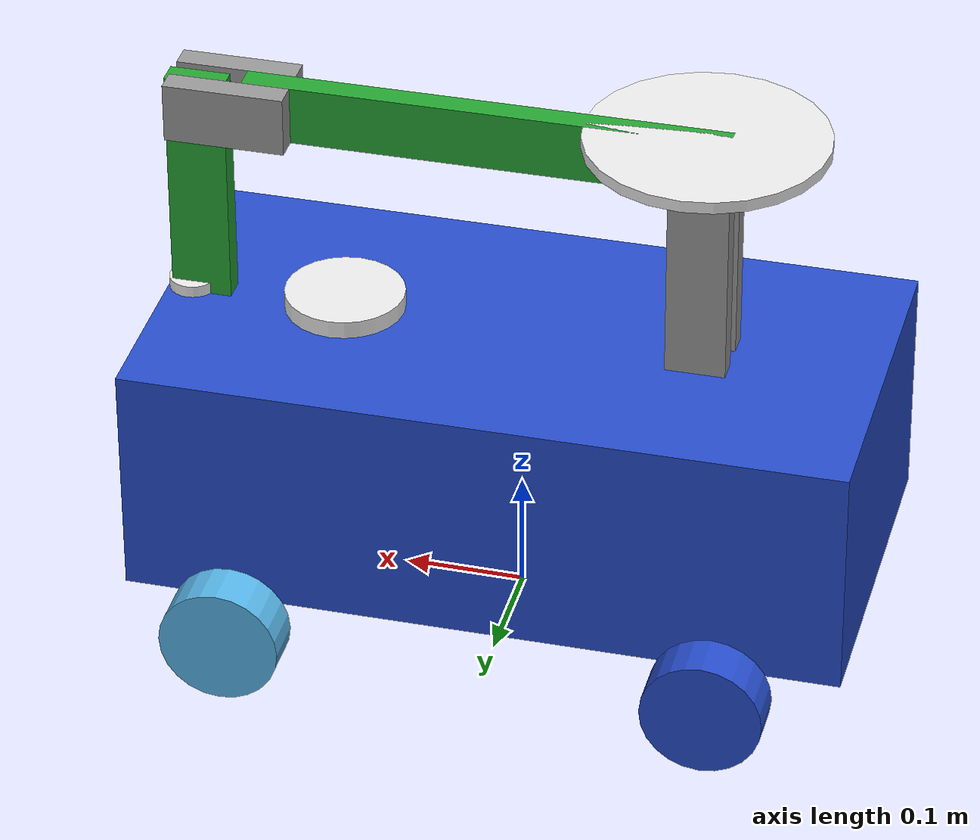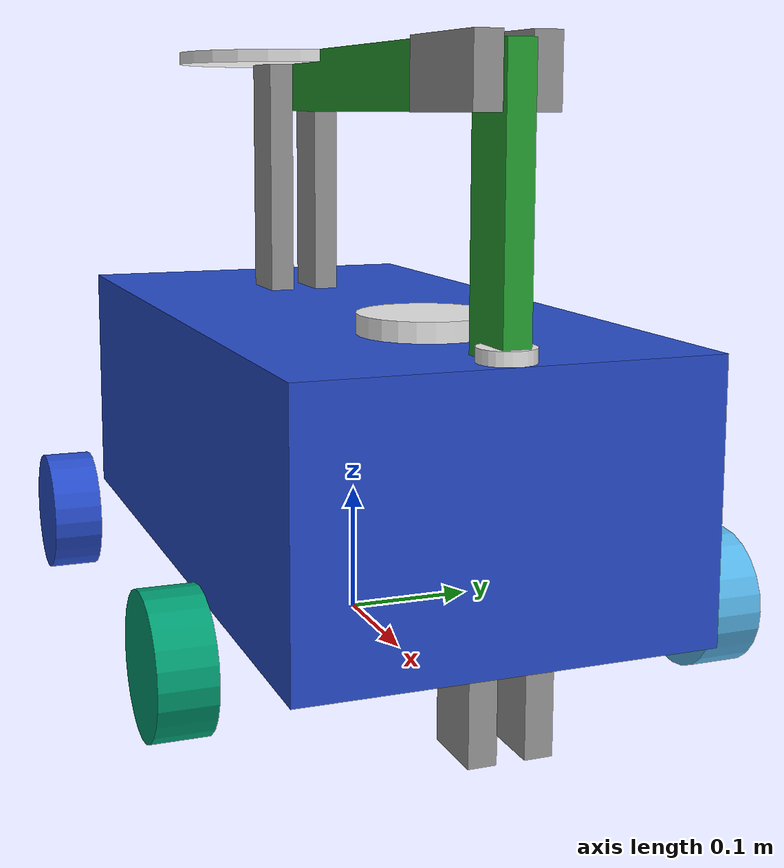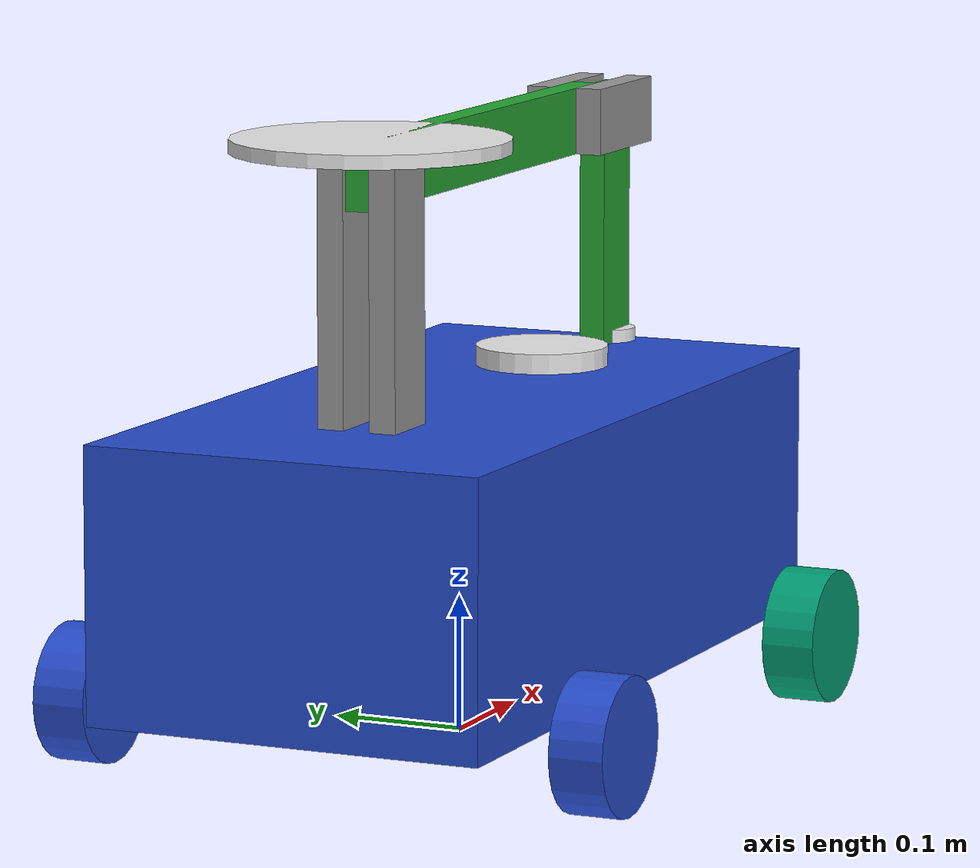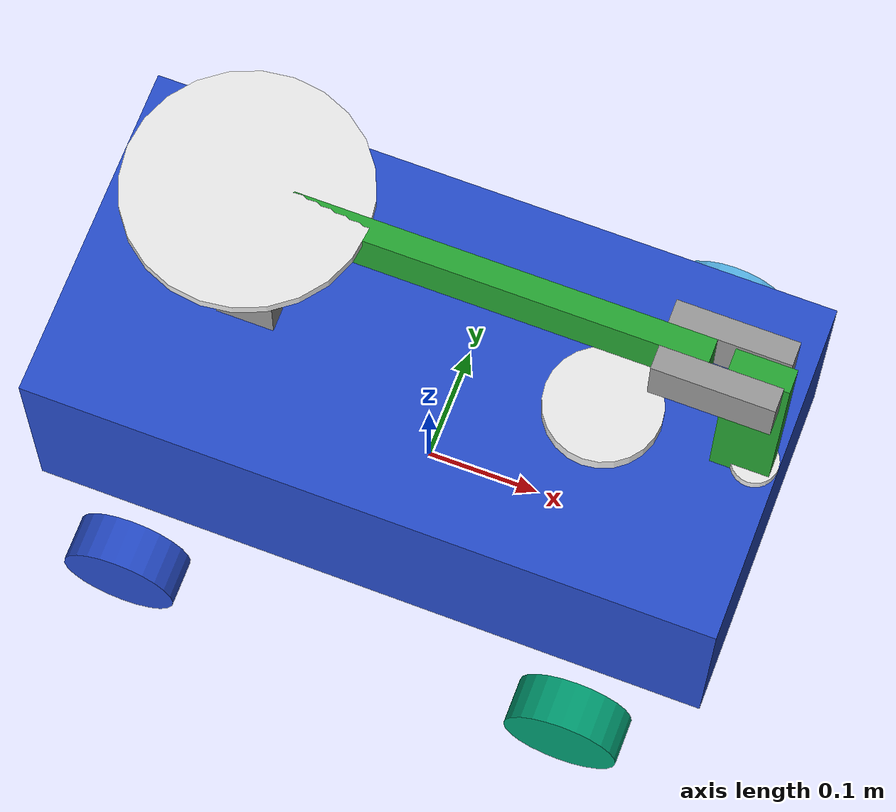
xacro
<?xml version="1.0" ?>
<robot name="test_robot" xmlns:xacro="http://www.ros.org/wiki/xacro">

  <xacro:include filename="$(find test_robot_description)/urdf/materials.xacro" />
  <xacro:include filename="$(find test_robot_description)/urdf/test_robot.gazebo" />
  <xacro:include filename="$(find test_robot_description)/urdf/macros.xacro" />

  <link name="base_link">
    <!-- pose and inertial -->
    <pose>0 0 0.1 0 0 0</pose>
    <inertial>
      <mass value="5"/>
      <origin rpy="0 0 0" xyz="0 0 0.1"/>
      <inertia ixx="0.0395416666667" ixy="0" ixz="0" iyy="0.106208333333" iyz="0" izz="0.106208333333"/>
    </inertial>
    <!-- body -->
    <collision name="collision_chassis">
      <origin rpy="0 0 0" xyz="0 0 0.15"/>
      <geometry>
        <box size="0.6 0.3 0.20"/>
      </geometry>
    </collision>
    <visual>
      <origin rpy="0 0 0" xyz="0 0 0.15"/>
      <geometry>
        <box size="0.6 0.3 0.20"/>
      </geometry>
      <material name="blue"/>
    </visual>
  </link>

  <xacro:arm name="arm" height="0.2" thickness="0.02" />
  <joint name="joint_arm" type="fixed">
    <origin xyz="-0.15 0 0.25" rpy="0 0 0"/>
    <parent link="base_link"/>
    <child link="arm"/>
  </joint>

  <xacro:flat_cylinder name="gps" radius="0.02" length="0.02" mass="0.1" />
  <joint name="joint_gps" type="fixed">
    <origin xyz="0.28 0 0.25" rpy="0 0 0"/>
    <parent link="base_link"/>
    <child link="gps"/>
  </joint>

  <xacro:flat_cylinder name="wheel_imu" radius="0.05" length="0.03" mass="1" />
  <joint name="joint_wheel_imu" type="fixed">
    <origin xyz="0.15 0 0.25" rpy="0 0 0"/>
    <parent link="base_link"/>
    <child link="wheel_imu"/>
  </joint>

  <xacro:link_wheel name="link_right_wheel" />
  <xacro:joint_wheel name="joint_right_wheel" child="link_right_wheel" origin_xyz="-0.2 0.20 0.05" />

  <xacro:link_wheel name="link_left_wheel" />
  <xacro:joint_wheel name="joint_left_wheel" child="link_left_wheel" origin_xyz="-0.2 -0.20 0.05" />

  <xacro:link_wheel name="link_right_front_wheel" />
  <xacro:joint_wheel name="joint_right_front_wheel" child="link_right_front_wheel" origin_xyz="0.2 0.20 0.05" />

  <xacro:link_wheel name="link_left_front_wheel" />
  <xacro:joint_wheel name="joint_left_front_wheel" child="link_left_front_wheel" origin_xyz="0.2 -0.20 0.05" />
</robot>

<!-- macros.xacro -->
<robot xmlns:xacro="http://www.ros.org/wiki/xacro">

    <xacro:macro name="link_wheel" params="name">
        <link name="${name}">
            <inertial>
              <mass value="0.2"/>
              <origin rpy="0 1.5707 1.5707" xyz="0 0 0"/>
              <inertia ixx="0.000526666666667" ixy="0" ixz="0" iyy="0.000526666666667" iyz="0" izz="0.001"/>
            </inertial>
            <collision name="${name}_collision">
              <origin rpy="0 1.5707 1.5707" xyz="0 0 0"/>
              <geometry>
                <cylinder length="0.04" radius="0.05"/>
              </geometry>
            </collision>
            <visual name="${name}_visual">
              <origin rpy="0 1.5707 1.5707" xyz="0 0 0"/>
              <geometry>
                <cylinder length="0.04" radius="0.05"/>
              </geometry>
            </visual>
        </link>
    </xacro:macro>

    <xacro:macro name="arm_link" params="name height thickness">
      <link name="${name}">
        <visual>
          <origin rpy="0 0 0" xyz="0 0 ${height-thickness}"/>
          <geometry>
            <box size="0.05 ${thickness} ${height*2}"/>
          </geometry>
          <material name="green"/>
        </visual>
        <visual>
          <origin rpy="0 0 0" xyz="0 ${thickness} ${2*height-thickness/2}"/>
          <geometry>
            <box size="0.05 ${thickness} ${height/2}"/>
          </geometry>
          <material name="grey"/>
        </visual>
        <visual>
          <origin rpy="0 0 0" xyz="0 -${thickness} ${2*height-thickness/2}"/>
          <geometry>
            <box size="0.05 ${thickness} ${height/2}"/>
          </geometry>
          <material name="grey"/>
        </visual>
      </link>
    </xacro:macro>

    <xacro:macro name="arm" params="name height thickness">
      <link name="${name}">
        <visual>
          <origin rpy="0 0 0" xyz="0 ${thickness} ${height/2}"/>
          <geometry>
            <box size="0.05 ${thickness} ${height}"/>
          </geometry>
          <material name="grey"/>
        </visual>
        <visual>
          <origin rpy="0 0 0" xyz="0 -${thickness} ${height/2}"/>
          <geometry>
            <box size="0.05 ${thickness} ${height}"/>
          </geometry>
          <material name="grey"/>
        </visual>
      </link>

      <xacro:arm_link name="${name}_link1" height="${height}" thickness="${thickness}" />
      <xacro:arm_link name="${name}_link2" height="${height}" thickness="${thickness}" />
      <xacro:flat_cylinder name="test_plane" radius="0.1" length="0.01" mass="0.1" />

      <joint name="${name}_joint1" type="floating">
        <origin rpy="0 ${pi/2} 0" xyz="0 0 ${height-thickness}"/>
        <child link="${name}_link1"/>
        <parent link="${name}"/>
        <axis rpy="0 0 0" xyz="0 0 0"/>
        <limit effort="10000" velocity="1000"/>
        <joint_properties damping="1.0" friction="1.0"/>
      </joint>

      <joint name="${name}_joint2" type="floating">
        <origin rpy="0 ${pi/2} 0" xyz="0 0 ${2*height+thickness}"/>
        <child link="${name}_link2"/>
        <parent link="${name}_link1"/>
        <axis rpy="0 0 0" xyz="0 0 0"/>
        <limit effort="10000" velocity="1000"/>
        <joint_properties damping="1.0" friction="1.0"/>
      </joint>

      <joint name="${name}_joint_test" type="floating">
        <origin rpy="0 0 0" xyz="0 0 ${height}"/>
        <child link="test_plane"/>
        <parent link="${name}"/>
        <axis rpy="0 0 0" xyz="0 0 0"/>
        <limit effort="10000" velocity="1000"/>
        <joint_properties damping="1.0" friction="1.0"/>
      </joint>

    </xacro:macro>

    <xacro:macro name="flat_cylinder" params="name radius length mass">
      <link name="${name}">
        <inertial>
          <origin xyz="0 0 0" rpy="0 0 0" />
          <mass value="${mass}" />
          <xacro:cylinder_inertia mass="${mass}" r="${radius}" l="${length}" />
        </inertial>
        <visual>
          <origin xyz="0 0 0" rpy="0 0 0" />
          <geometry>
            <cylinder radius="${radius}" length="${length}"/>
          </geometry>
          <material name="white" />
        </visual>
        <collision>
          <origin xyz="0 0 0" rpy="0 0 0"/>
          <geometry>
            <cylinder radius="${radius}" length="${length}"/>
          </geometry>
        </collision>
      </link>
    </xacro:macro>

    <xacro:macro name="joint_wheel" params="name child origin_xyz">
      <joint name="${name}" type="continuous">
        <origin rpy="0 0 0" xyz="${origin_xyz}"/>
        <child link="${child}"/>
        <parent link="base_link"/>
        <axis rpy="0 0 0" xyz="0 1 0"/>
        <limit effort="10000" velocity="1000"/>
        <joint_properties damping="1.0" friction="1.0"/>
      </joint>
    </xacro:macro>

    <xacro:macro name="cylinder_inertia" params="mass r l">
      <inertia  ixx="${mass*(3*r*r+l*l)/12}" ixy = "0" ixz = "0"
                iyy="${mass*(3*r*r+l*l)/12}" iyz = "0"
                izz="${mass*(r*r)/2}" />
    </xacro:macro>
</robot>
